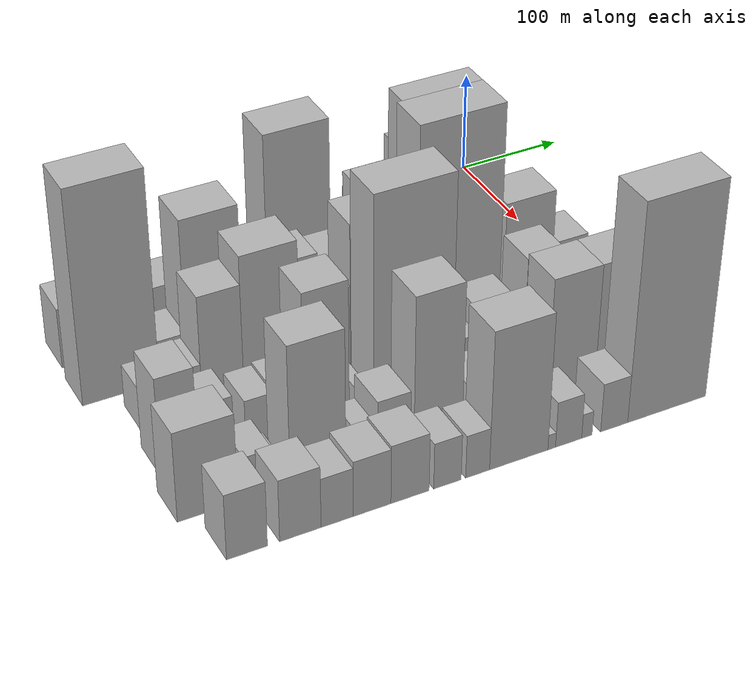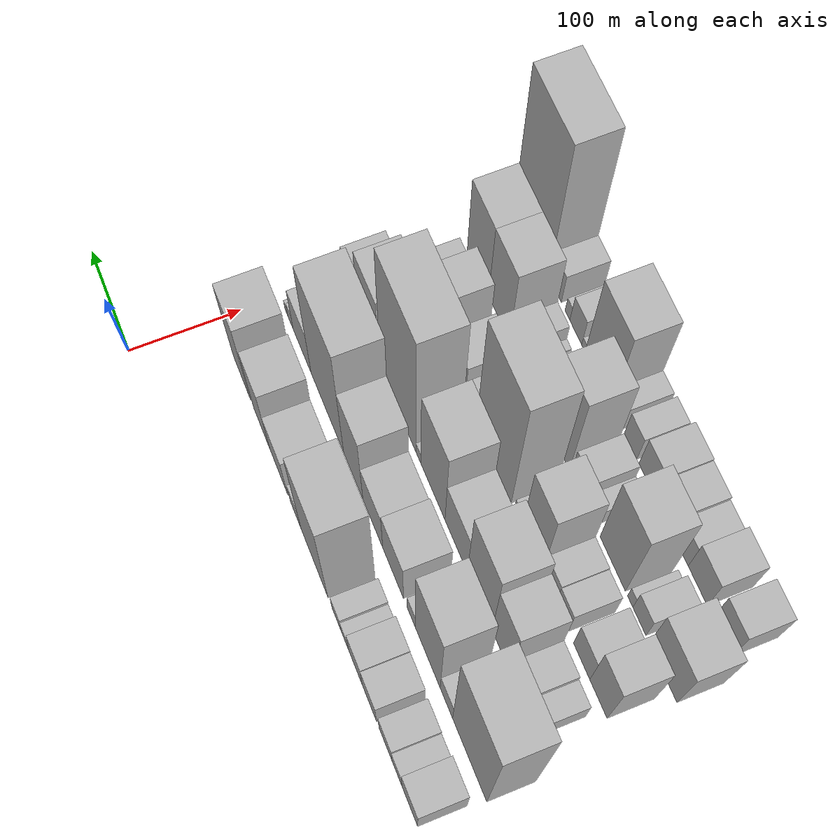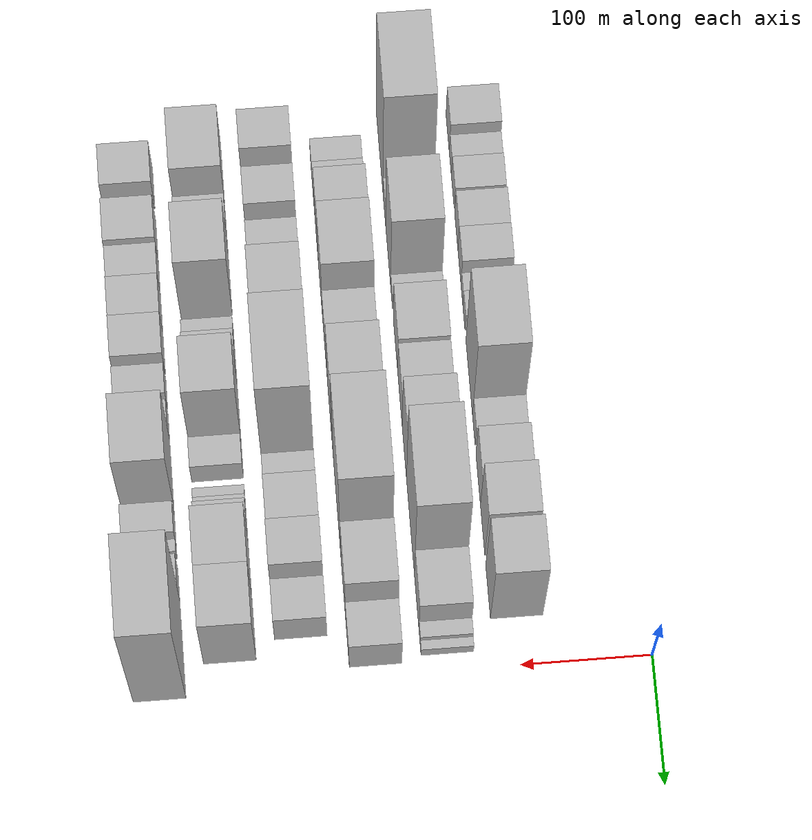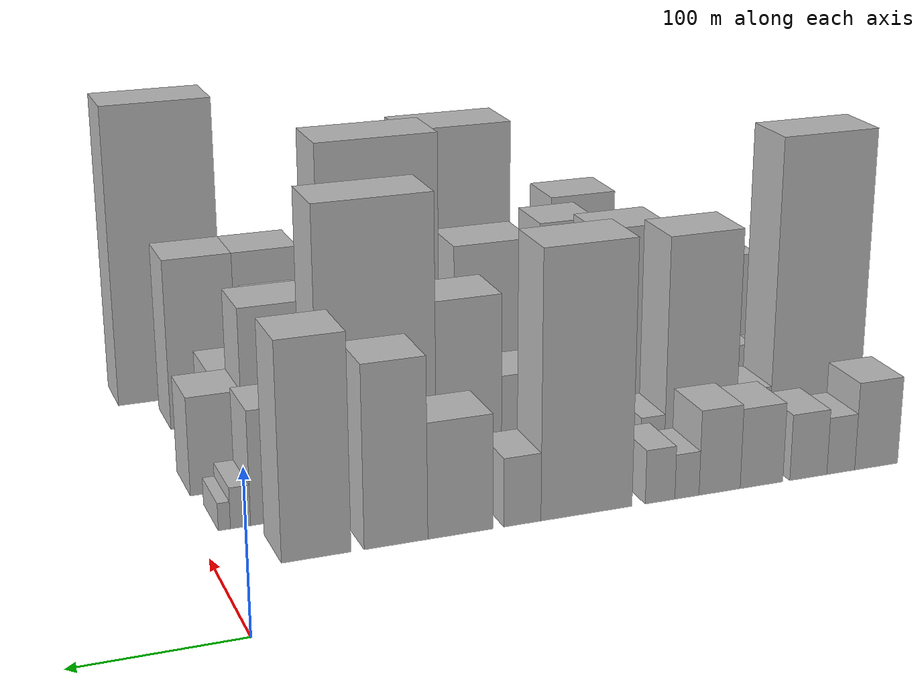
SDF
<sdf version="1.6">
 <world name="default">
  <model name="building_15">
   <static>1</static>
   <pose>100.0000 -434.0075 0 0.000000 0.000000 0.000000</pose>
   <link name="link">
    <pose>0 0 30.00 0 0 0</pose>
    <collision name="collision"><geometry><box><size>40.0000 31.7995 60.0000</size></box></geometry></collision>
    <visual name="visual">
     <cast_shadows>0</cast_shadows>
     <geometry><box><size>40.0000 31.7995 60.0000</size></box></geometry>
     <material>
      <script>
       <uri>model://HANNAS_wall/materials/scripts</uri>
       <uri>model://HANNAS_wall/materials/textures</uri>
       <name>vrc/HANNAS_wall</name>
      </script>
     </material>
    </visual>
   </link>
  </model>
  <model name="building_16">
   <static>1</static>
   <pose>100.0000 -407.9392 0 0.000000 0.000000 0.000000</pose>
   <link name="link">
    <pose>0 0 19.50 0 0 0</pose>
    <collision name="collision"><geometry><box><size>40.0000 20.3372 39.0000</size></box></geometry></collision>
    <visual name="visual">
     <cast_shadows>0</cast_shadows>
     <geometry><box><size>40.0000 20.3372 39.0000</size></box></geometry>
     <material>
      <script>
       <uri>model://HANNAS_wall/materials/scripts</uri>
       <uri>model://HANNAS_wall/materials/textures</uri>
       <name>vrc/HANNAS_wall</name>
      </script>
     </material>
    </visual>
   </link>
  </model>
  <model name="building_17">
   <static>1</static>
   <pose>100.0000 -384.3671 0 0.000000 0.000000 0.000000</pose>
   <link name="link">
    <pose>0 0 22.50 0 0 0</pose>
    <collision name="collision"><geometry><box><size>40.0000 26.8070 45.0000</size></box></geometry></collision>
    <visual name="visual">
     <cast_shadows>0</cast_shadows>
     <geometry><box><size>40.0000 26.8070 45.0000</size></box></geometry>
     <material>
      <script>
       <uri>model://HANNAS_wall/materials/scripts</uri>
       <uri>model://HANNAS_wall/materials/textures</uri>
       <name>vrc/HANNAS_wall</name>
      </script>
     </material>
    </visual>
   </link>
  </model>
  <model name="building_18">
   <static>1</static>
   <pose>100.0000 -350.8128 0 0.000000 0.000000 0.000000</pose>
   <link name="link">
    <pose>0 0 27.00 0 0 0</pose>
    <collision name="collision"><geometry><box><size>40.0000 30.3017 54.0000</size></box></geometry></collision>
    <visual name="visual">
     <cast_shadows>0</cast_shadows>
     <geometry><box><size>40.0000 30.3017 54.0000</size></box></geometry>
     <material>
      <script>
       <uri>model://HANNAS_wall/materials/scripts</uri>
       <uri>model://HANNAS_wall/materials/textures</uri>
       <name>vrc/HANNAS_wall</name>
      </script>
     </material>
    </visual>
   </link>
  </model>
  <model name="building_19">
   <static>1</static>
   <pose>100.0000 -321.2850 0 0.000000 0.000000 0.000000</pose>
   <link name="link">
    <pose>0 0 28.50 0 0 0</pose>
    <collision name="collision"><geometry><box><size>40.0000 28.7539 57.0000</size></box></geometry></collision>
    <visual name="visual">
     <cast_shadows>0</cast_shadows>
     <geometry><box><size>40.0000 28.7539 57.0000</size></box></geometry>
     <material>
      <script>
       <uri>model://HANNAS_wall/materials/scripts</uri>
       <uri>model://HANNAS_wall/materials/textures</uri>
       <name>vrc/HANNAS_wall</name>
      </script>
     </material>
    </visual>
   </link>
  </model>
  <model name="building_20">
   <static>1</static>
   <pose>100.0000 -298.5573 0 0.000000 0.000000 0.000000</pose>
   <link name="link">
    <pose>0 0 15.00 0 0 0</pose>
    <collision name="collision"><geometry><box><size>40.0000 16.7016 30.0000</size></box></geometry></collision>
    <visual name="visual">
     <cast_shadows>0</cast_shadows>
     <geometry><box><size>40.0000 16.7016 30.0000</size></box></geometry>
     <material>
      <script>
       <uri>model://HANNAS_wall/materials/scripts</uri>
       <uri>model://HANNAS_wall/materials/textures</uri>
       <name>vrc/HANNAS_wall</name>
      </script>
     </material>
    </visual>
   </link>
  </model>
  <model name="building_21">
   <static>1</static>
   <pose>100.0000 -280.0952 0 0.000000 0.000000 0.000000</pose>
   <link name="link">
    <pose>0 0 18.00 0 0 0</pose>
    <collision name="collision"><geometry><box><size>40.0000 20.2226 36.0000</size></box></geometry></collision>
    <visual name="visual">
     <cast_shadows>0</cast_shadows>
     <geometry><box><size>40.0000 20.2226 36.0000</size></box></geometry>
     <material>
      <script>
       <uri>model://HANNAS_wall/materials/scripts</uri>
       <uri>model://HANNAS_wall/materials/textures</uri>
       <name>vrc/HANNAS_wall</name>
      </script>
     </material>
    </visual>
   </link>
  </model>
  <model name="building_22">
   <static>1</static>
   <pose>100.0000 -230.6435 0 0.000000 0.000000 0.000000</pose>
   <link name="link">
    <pose>0 0 87.00 0 0 0</pose>
    <collision name="collision"><geometry><box><size>40.0000 60.6807 174.0000</size></box></geometry></collision>
    <visual name="visual">
     <cast_shadows>0</cast_shadows>
     <geometry><box><size>40.0000 60.6807 174.0000</size></box></geometry>
     <material>
      <script>
       <uri>model://HANNAS_wall/materials/scripts</uri>
       <uri>model://HANNAS_wall/materials/textures</uri>
       <name>vrc/HANNAS_wall</name>
      </script>
     </material>
    </visual>
   </link>
  </model>
  <model name="building_23">
   <static>1</static>
   <pose>100.0000 -188.2242 0 0.000000 0.000000 0.000000</pose>
   <link name="link">
    <pose>0 0 22.50 0 0 0</pose>
    <collision name="collision"><geometry><box><size>40.0000 24.1580 45.0000</size></box></geometry></collision>
    <visual name="visual">
     <cast_shadows>0</cast_shadows>
     <geometry><box><size>40.0000 24.1580 45.0000</size></box></geometry>
     <material>
      <script>
       <uri>model://HANNAS_wall/materials/scripts</uri>
       <uri>model://HANNAS_wall/materials/textures</uri>
       <name>vrc/HANNAS_wall</name>
      </script>
     </material>
    </visual>
   </link>
  </model>
  <model name="building_24">
   <static>1</static>
   <pose>100.0000 -148.4430 0 0.000000 0.000000 0.000000</pose>
   <link name="link">
    <pose>0 0 37.50 0 0 0</pose>
    <collision name="collision"><geometry><box><size>40.0000 41.4044 75.0000</size></box></geometry></collision>
    <visual name="visual">
     <cast_shadows>0</cast_shadows>
     <geometry><box><size>40.0000 41.4044 75.0000</size></box></geometry>
     <material>
      <script>
       <uri>model://HANNAS_wall/materials/scripts</uri>
       <uri>model://HANNAS_wall/materials/textures</uri>
       <name>vrc/HANNAS_wall</name>
      </script>
     </material>
    </visual>
   </link>
  </model>
  <model name="building_25">
   <static>1</static>
   <pose>100.0000 -107.9037 0 0.000000 0.000000 0.000000</pose>
   <link name="link">
    <pose>0 0 58.50 0 0 0</pose>
    <collision name="collision"><geometry><box><size>40.0000 39.6741 117.0000</size></box></geometry></collision>
    <visual name="visual">
     <cast_shadows>0</cast_shadows>
     <geometry><box><size>40.0000 39.6741 117.0000</size></box></geometry>
     <material>
      <script>
       <uri>model://HANNAS_wall/materials/scripts</uri>
       <uri>model://HANNAS_wall/materials/textures</uri>
       <name>vrc/HANNAS_wall</name>
      </script>
     </material>
    </visual>
   </link>
  </model>
  <model name="building_26">
   <static>1</static>
   <pose>100.0000 -58.9600 0 0.000000 0.000000 0.000000</pose>
   <link name="link">
    <pose>0 0 69.00 0 0 0</pose>
    <collision name="collision"><geometry><box><size>40.0000 42.2133 138.0000</size></box></geometry></collision>
    <visual name="visual">
     <cast_shadows>0</cast_shadows>
     <geometry><box><size>40.0000 42.2133 138.0000</size></box></geometry>
     <material>
      <script>
       <uri>model://HANNAS_wall/materials/scripts</uri>
       <uri>model://HANNAS_wall/materials/textures</uri>
       <name>vrc/HANNAS_wall</name>
      </script>
     </material>
    </visual>
   </link>
  </model>
  <model name="building_59">
   <static>1</static>
   <pose>155.0000 -418.9712 0 0.000000 0.000000 0.000000</pose>
   <link name="link">
    <pose>0 0 105.00 0 0 0</pose>
    <collision name="collision"><geometry><box><size>40.0000 67.4243 210.0000</size></box></geometry></collision>
    <visual name="visual">
     <cast_shadows>0</cast_shadows>
     <geometry><box><size>40.0000 67.4243 210.0000</size></box></geometry>
     <material>
      <script>
       <uri>model://HANNAS_wall/materials/scripts</uri>
       <uri>model://HANNAS_wall/materials/textures</uri>
       <name>vrc/HANNAS_wall</name>
      </script>
     </material>
    </visual>
   </link>
  </model>
  <model name="building_60">
   <static>1</static>
   <pose>155.0000 -372.6941 0 0.000000 0.000000 0.000000</pose>
   <link name="link">
    <pose>0 0 21.00 0 0 0</pose>
    <collision name="collision"><geometry><box><size>40.0000 25.1300 42.0000</size></box></geometry></collision>
    <visual name="visual">
     <cast_shadows>0</cast_shadows>
     <geometry><box><size>40.0000 25.1300 42.0000</size></box></geometry>
     <material>
      <script>
       <uri>model://HANNAS_wall/materials/scripts</uri>
       <uri>model://HANNAS_wall/materials/textures</uri>
       <name>vrc/HANNAS_wall</name>
      </script>
     </material>
    </visual>
   </link>
  </model>
  <model name="building_61">
   <static>1</static>
   <pose>155.0000 -334.4267 0 0.000000 0.000000 0.000000</pose>
   <link name="link">
    <pose>0 0 76.50 0 0 0</pose>
    <collision name="collision"><geometry><box><size>40.0000 51.4048 153.0000</size></box></geometry></collision>
    <visual name="visual">
     <cast_shadows>0</cast_shadows>
     <geometry><box><size>40.0000 51.4048 153.0000</size></box></geometry>
     <material>
      <script>
       <uri>model://HANNAS_wall/materials/scripts</uri>
       <uri>model://HANNAS_wall/materials/textures</uri>
       <name>vrc/HANNAS_wall</name>
      </script>
     </material>
    </visual>
   </link>
  </model>
  <model name="building_62">
   <static>1</static>
   <pose>155.0000 -300.2617 0 0.000000 0.000000 0.000000</pose>
   <link name="link">
    <pose>0 0 16.50 0 0 0</pose>
    <collision name="collision"><geometry><box><size>40.0000 16.9251 33.0000</size></box></geometry></collision>
    <visual name="visual">
     <cast_shadows>0</cast_shadows>
     <geometry><box><size>40.0000 16.9251 33.0000</size></box></geometry>
     <material>
      <script>
       <uri>model://HANNAS_wall/materials/scripts</uri>
       <uri>model://HANNAS_wall/materials/textures</uri>
       <name>vrc/HANNAS_wall</name>
      </script>
     </material>
    </visual>
   </link>
  </model>
  <model name="building_63">
   <static>1</static>
   <pose>155.0000 -261.4662 0 0.000000 0.000000 0.000000</pose>
   <link name="link">
    <pose>0 0 42.00 0 0 0</pose>
    <collision name="collision"><geometry><box><size>40.0000 44.6659 84.0000</size></box></geometry></collision>
    <visual name="visual">
     <cast_shadows>0</cast_shadows>
     <geometry><box><size>40.0000 44.6659 84.0000</size></box></geometry>
     <material>
      <script>
       <uri>model://HANNAS_wall/materials/scripts</uri>
       <uri>model://HANNAS_wall/materials/textures</uri>
       <name>vrc/HANNAS_wall</name>
      </script>
     </material>
    </visual>
   </link>
  </model>
  <model name="building_64">
   <static>1</static>
   <pose>155.0000 -217.3308 0 0.000000 0.000000 0.000000</pose>
   <link name="link">
    <pose>0 0 37.50 0 0 0</pose>
    <collision name="collision"><geometry><box><size>40.0000 43.6050 75.0000</size></box></geometry></collision>
    <visual name="visual">
     <cast_shadows>0</cast_shadows>
     <geometry><box><size>40.0000 43.6050 75.0000</size></box></geometry>
     <material>
      <script>
       <uri>model://HANNAS_wall/materials/scripts</uri>
       <uri>model://HANNAS_wall/materials/textures</uri>
       <name>vrc/HANNAS_wall</name>
      </script>
     </material>
    </visual>
   </link>
  </model>
  <model name="building_65">
   <static>1</static>
   <pose>155.0000 -173.9012 0 0.000000 0.000000 0.000000</pose>
   <link name="link">
    <pose>0 0 64.50 0 0 0</pose>
    <collision name="collision"><geometry><box><size>40.0000 43.2541 129.0000</size></box></geometry></collision>
    <visual name="visual">
     <cast_shadows>0</cast_shadows>
     <geometry><box><size>40.0000 43.2541 129.0000</size></box></geometry>
     <material>
      <script>
       <uri>model://HANNAS_wall/materials/scripts</uri>
       <uri>model://HANNAS_wall/materials/textures</uri>
       <name>vrc/HANNAS_wall</name>
      </script>
     </material>
    </visual>
   </link>
  </model>
  <model name="building_66">
   <static>1</static>
   <pose>155.0000 -114.4377 0 0.000000 0.000000 0.000000</pose>
   <link name="link">
    <pose>0 0 99.00 0 0 0</pose>
    <collision name="collision"><geometry><box><size>40.0000 75.6730 198.0000</size></box></geometry></collision>
    <visual name="visual">
     <cast_shadows>0</cast_shadows>
     <geometry><box><size>40.0000 75.6730 198.0000</size></box></geometry>
     <material>
      <script>
       <uri>model://HANNAS_wall/materials/scripts</uri>
       <uri>model://HANNAS_wall/materials/textures</uri>
       <name>vrc/HANNAS_wall</name>
      </script>
     </material>
    </visual>
   </link>
  </model>
  <model name="building_67">
   <static>1</static>
   <pose>155.0000 -54.9762 0 0.000000 0.000000 0.000000</pose>
   <link name="link">
    <pose>0 0 37.50 0 0 0</pose>
    <collision name="collision"><geometry><box><size>40.0000 43.2499 75.0000</size></box></geometry></collision>
    <visual name="visual">
     <cast_shadows>0</cast_shadows>
     <geometry><box><size>40.0000 43.2499 75.0000</size></box></geometry>
     <material>
      <script>
       <uri>model://HANNAS_wall/materials/scripts</uri>
       <uri>model://HANNAS_wall/materials/textures</uri>
       <name>vrc/HANNAS_wall</name>
      </script>
     </material>
    </visual>
   </link>
  </model>
  <model name="building_68">
   <static>1</static>
   <pose>155.0000 -27.1181 0 0.000000 0.000000 0.000000</pose>
   <link name="link">
    <pose>0 0 13.50 0 0 0</pose>
    <collision name="collision"><geometry><box><size>40.0000 12.4663 27.0000</size></box></geometry></collision>
    <visual name="visual">
     <cast_shadows>0</cast_shadows>
     <geometry><box><size>40.0000 12.4663 27.0000</size></box></geometry>
     <material>
      <script>
       <uri>model://HANNAS_wall/materials/scripts</uri>
       <uri>model://HANNAS_wall/materials/textures</uri>
       <name>vrc/HANNAS_wall</name>
      </script>
     </material>
    </visual>
   </link>
  </model>
  <model name="building_69">
   <static>1</static>
   <pose>155.0000 -17.1437 0 0.000000 0.000000 0.000000</pose>
   <link name="link">
    <pose>0 0 9.00 0 0 0</pose>
    <collision name="collision"><geometry><box><size>40.0000 7.4824 18.0000</size></box></geometry></collision>
    <visual name="visual">
     <cast_shadows>0</cast_shadows>
     <geometry><box><size>40.0000 7.4824 18.0000</size></box></geometry>
     <material>
      <script>
       <uri>model://HANNAS_wall/materials/scripts</uri>
       <uri>model://HANNAS_wall/materials/textures</uri>
       <name>vrc/HANNAS_wall</name>
      </script>
     </material>
    </visual>
   </link>
  </model>
  <model name="building_101">
   <static>1</static>
   <pose>210.0000 -410.9570 0 0.000000 0.000000 0.000000</pose>
   <link name="link">
    <pose>0 0 21.00 0 0 0</pose>
    <collision name="collision"><geometry><box><size>40.0000 22.5368 42.0000</size></box></geometry></collision>
    <visual name="visual">
     <cast_shadows>0</cast_shadows>
     <geometry><box><size>40.0000 22.5368 42.0000</size></box></geometry>
     <material>
      <script>
       <uri>model://HANNAS_wall/materials/scripts</uri>
       <uri>model://HANNAS_wall/materials/textures</uri>
       <name>vrc/HANNAS_wall</name>
      </script>
     </material>
    </visual>
   </link>
  </model>
  <model name="building_102">
   <static>1</static>
   <pose>210.0000 -384.8382 0 0.000000 0.000000 0.000000</pose>
   <link name="link">
    <pose>0 0 25.50 0 0 0</pose>
    <collision name="collision"><geometry><box><size>40.0000 29.7009 51.0000</size></box></geometry></collision>
    <visual name="visual">
     <cast_shadows>0</cast_shadows>
     <geometry><box><size>40.0000 29.7009 51.0000</size></box></geometry>
     <material>
      <script>
       <uri>model://HANNAS_wall/materials/scripts</uri>
       <uri>model://HANNAS_wall/materials/textures</uri>
       <name>vrc/HANNAS_wall</name>
      </script>
     </material>
    </visual>
   </link>
  </model>
  <model name="building_103">
   <static>1</static>
   <pose>210.0000 -351.5279 0 0.000000 0.000000 0.000000</pose>
   <link name="link">
    <pose>0 0 58.50 0 0 0</pose>
    <collision name="collision"><geometry><box><size>40.0000 36.9197 117.0000</size></box></geometry></collision>
    <visual name="visual">
     <cast_shadows>0</cast_shadows>
     <geometry><box><size>40.0000 36.9197 117.0000</size></box></geometry>
     <material>
      <script>
       <uri>model://HANNAS_wall/materials/scripts</uri>
       <uri>model://HANNAS_wall/materials/textures</uri>
       <name>vrc/HANNAS_wall</name>
      </script>
     </material>
    </visual>
   </link>
  </model>
  <model name="building_104">
   <static>1</static>
   <pose>210.0000 -307.8760 0 0.000000 0.000000 0.000000</pose>
   <link name="link">
    <pose>0 0 72.00 0 0 0</pose>
    <collision name="collision"><geometry><box><size>40.0000 50.3840 144.0000</size></box></geometry></collision>
    <visual name="visual">
     <cast_shadows>0</cast_shadows>
     <geometry><box><size>40.0000 50.3840 144.0000</size></box></geometry>
     <material>
      <script>
       <uri>model://HANNAS_wall/materials/scripts</uri>
       <uri>model://HANNAS_wall/materials/textures</uri>
       <name>vrc/HANNAS_wall</name>
      </script>
     </material>
    </visual>
   </link>
  </model>
  <model name="building_105">
   <static>1</static>
   <pose>210.0000 -259.4797 0 0.000000 0.000000 0.000000</pose>
   <link name="link">
    <pose>0 0 42.00 0 0 0</pose>
    <collision name="collision"><geometry><box><size>40.0000 46.4086 84.0000</size></box></geometry></collision>
    <visual name="visual">
     <cast_shadows>0</cast_shadows>
     <geometry><box><size>40.0000 46.4086 84.0000</size></box></geometry>
     <material>
      <script>
       <uri>model://HANNAS_wall/materials/scripts</uri>
       <uri>model://HANNAS_wall/materials/textures</uri>
       <name>vrc/HANNAS_wall</name>
      </script>
     </material>
    </visual>
   </link>
  </model>
  <model name="building_106">
   <static>1</static>
   <pose>210.0000 -210.1676 0 0.000000 0.000000 0.000000</pose>
   <link name="link">
    <pose>0 0 72.00 0 0 0</pose>
    <collision name="collision"><geometry><box><size>40.0000 52.2157 144.0000</size></box></geometry></collision>
    <visual name="visual">
     <cast_shadows>0</cast_shadows>
     <geometry><box><size>40.0000 52.2157 144.0000</size></box></geometry>
     <material>
      <script>
       <uri>model://HANNAS_wall/materials/scripts</uri>
       <uri>model://HANNAS_wall/materials/textures</uri>
       <name>vrc/HANNAS_wall</name>
      </script>
     </material>
    </visual>
   </link>
  </model>
  <model name="building_107">
   <static>1</static>
   <pose>210.0000 -178.8407 0 0.000000 0.000000 0.000000</pose>
   <link name="link">
    <pose>0 0 10.50 0 0 0</pose>
    <collision name="collision"><geometry><box><size>40.0000 10.4381 21.0000</size></box></geometry></collision>
    <visual name="visual">
     <cast_shadows>0</cast_shadows>
     <geometry><box><size>40.0000 10.4381 21.0000</size></box></geometry>
     <material>
      <script>
       <uri>model://HANNAS_wall/materials/scripts</uri>
       <uri>model://HANNAS_wall/materials/textures</uri>
       <name>vrc/HANNAS_wall</name>
      </script>
     </material>
    </visual>
   </link>
  </model>
  <model name="building_108">
   <static>1</static>
   <pose>210.0000 -134.2193 0 0.000000 0.000000 0.000000</pose>
   <link name="link">
    <pose>0 0 109.50 0 0 0</pose>
    <collision name="collision"><geometry><box><size>40.0000 78.8046 219.0000</size></box></geometry></collision>
    <visual name="visual">
     <cast_shadows>0</cast_shadows>
     <geometry><box><size>40.0000 78.8046 219.0000</size></box></geometry>
     <material>
      <script>
       <uri>model://HANNAS_wall/materials/scripts</uri>
       <uri>model://HANNAS_wall/materials/textures</uri>
       <name>vrc/HANNAS_wall</name>
      </script>
     </material>
    </visual>
   </link>
  </model>
  <model name="building_109">
   <static>1</static>
   <pose>210.0000 -66.9977 0 0.000000 0.000000 0.000000</pose>
   <link name="link">
    <pose>0 0 60.00 0 0 0</pose>
    <collision name="collision"><geometry><box><size>40.0000 47.6388 120.0000</size></box></geometry></collision>
    <visual name="visual">
     <cast_shadows>0</cast_shadows>
     <geometry><box><size>40.0000 47.6388 120.0000</size></box></geometry>
     <material>
      <script>
       <uri>model://HANNAS_wall/materials/scripts</uri>
       <uri>model://HANNAS_wall/materials/textures</uri>
       <name>vrc/HANNAS_wall</name>
      </script>
     </material>
    </visual>
   </link>
  </model>
  <model name="building_110">
   <static>1</static>
   <pose>210.0000 -25.8172 0 0.000000 0.000000 0.000000</pose>
   <link name="link">
    <pose>0 0 33.00 0 0 0</pose>
    <collision name="collision"><geometry><box><size>40.0000 34.7222 66.0000</size></box></geometry></collision>
    <visual name="visual">
     <cast_shadows>0</cast_shadows>
     <geometry><box><size>40.0000 34.7222 66.0000</size></box></geometry>
     <material>
      <script>
       <uri>model://HANNAS_wall/materials/scripts</uri>
       <uri>model://HANNAS_wall/materials/textures</uri>
       <name>vrc/HANNAS_wall</name>
      </script>
     </material>
    </visual>
   </link>
  </model>
  <model name="building_147">
   <static>1</static>
   <pose>265.0000 -413.5375 0 0.000000 0.000000 0.000000</pose>
   <link name="link">
    <pose>0 0 48.00 0 0 0</pose>
    <collision name="collision"><geometry><box><size>40.0000 32.2302 96.0000</size></box></geometry></collision>
    <visual name="visual">
     <cast_shadows>0</cast_shadows>
     <geometry><box><size>40.0000 32.2302 96.0000</size></box></geometry>
     <material>
      <script>
       <uri>model://HANNAS_wall/materials/scripts</uri>
       <uri>model://HANNAS_wall/materials/textures</uri>
       <name>vrc/HANNAS_wall</name>
      </script>
     </material>
    </visual>
   </link>
  </model>
  <model name="building_148">
   <static>1</static>
   <pose>265.0000 -381.9879 0 0.000000 0.000000 0.000000</pose>
   <link name="link">
    <pose>0 0 28.50 0 0 0</pose>
    <collision name="collision"><geometry><box><size>40.0000 30.8690 57.0000</size></box></geometry></collision>
    <visual name="visual">
     <cast_shadows>0</cast_shadows>
     <geometry><box><size>40.0000 30.8690 57.0000</size></box></geometry>
     <material>
      <script>
       <uri>model://HANNAS_wall/materials/scripts</uri>
       <uri>model://HANNAS_wall/materials/textures</uri>
       <name>vrc/HANNAS_wall</name>
      </script>
     </material>
    </visual>
   </link>
  </model>
  <model name="building_149">
   <static>1</static>
   <pose>265.0000 -344.4118 0 0.000000 0.000000 0.000000</pose>
   <link name="link">
    <pose>0 0 24.00 0 0 0</pose>
    <collision name="collision"><geometry><box><size>40.0000 24.2832 48.0000</size></box></geometry></collision>
    <visual name="visual">
     <cast_shadows>0</cast_shadows>
     <geometry><box><size>40.0000 24.2832 48.0000</size></box></geometry>
     <material>
      <script>
       <uri>model://HANNAS_wall/materials/scripts</uri>
       <uri>model://HANNAS_wall/materials/textures</uri>
       <name>vrc/HANNAS_wall</name>
      </script>
     </material>
    </visual>
   </link>
  </model>
  <model name="building_150">
   <static>1</static>
   <pose>265.0000 -318.9359 0 0.000000 0.000000 0.000000</pose>
   <link name="link">
    <pose>0 0 25.50 0 0 0</pose>
    <collision name="collision"><geometry><box><size>40.0000 26.6687 51.0000</size></box></geometry></collision>
    <visual name="visual">
     <cast_shadows>0</cast_shadows>
     <geometry><box><size>40.0000 26.6687 51.0000</size></box></geometry>
     <material>
      <script>
       <uri>model://HANNAS_wall/materials/scripts</uri>
       <uri>model://HANNAS_wall/materials/textures</uri>
       <name>vrc/HANNAS_wall</name>
      </script>
     </material>
    </visual>
   </link>
  </model>
  <model name="building_151">
   <static>1</static>
   <pose>265.0000 -285.3058 0 0.000000 0.000000 0.000000</pose>
   <link name="link">
    <pose>0 0 67.50 0 0 0</pose>
    <collision name="collision"><geometry><box><size>40.0000 40.5915 135.0000</size></box></geometry></collision>
    <visual name="visual">
     <cast_shadows>0</cast_shadows>
     <geometry><box><size>40.0000 40.5915 135.0000</size></box></geometry>
     <material>
      <script>
       <uri>model://HANNAS_wall/materials/scripts</uri>
       <uri>model://HANNAS_wall/materials/textures</uri>
       <name>vrc/HANNAS_wall</name>
      </script>
     </material>
    </visual>
   </link>
  </model>
  <model name="building_152">
   <static>1</static>
   <pose>265.0000 -254.5947 0 0.000000 0.000000 0.000000</pose>
   <link name="link">
    <pose>0 0 13.50 0 0 0</pose>
    <collision name="collision"><geometry><box><size>40.0000 10.8306 27.0000</size></box></geometry></collision>
    <visual name="visual">
     <cast_shadows>0</cast_shadows>
     <geometry><box><size>40.0000 10.8306 27.0000</size></box></geometry>
     <material>
      <script>
       <uri>model://HANNAS_wall/materials/scripts</uri>
       <uri>model://HANNAS_wall/materials/textures</uri>
       <name>vrc/HANNAS_wall</name>
      </script>
     </material>
    </visual>
   </link>
  </model>
  <model name="building_153">
   <static>1</static>
   <pose>265.0000 -206.5148 0 0.000000 0.000000 0.000000</pose>
   <link name="link">
    <pose>0 0 103.50 0 0 0</pose>
    <collision name="collision"><geometry><box><size>40.0000 73.3292 207.0000</size></box></geometry></collision>
    <visual name="visual">
     <cast_shadows>0</cast_shadows>
     <geometry><box><size>40.0000 73.3292 207.0000</size></box></geometry>
     <material>
      <script>
       <uri>model://HANNAS_wall/materials/scripts</uri>
       <uri>model://HANNAS_wall/materials/textures</uri>
       <name>vrc/HANNAS_wall</name>
      </script>
     </material>
    </visual>
   </link>
  </model>
  <model name="building_154">
   <static>1</static>
   <pose>265.0000 -158.3676 0 0.000000 0.000000 0.000000</pose>
   <link name="link">
    <pose>0 0 21.00 0 0 0</pose>
    <collision name="collision"><geometry><box><size>40.0000 22.9653 42.0000</size></box></geometry></collision>
    <visual name="visual">
     <cast_shadows>0</cast_shadows>
     <geometry><box><size>40.0000 22.9653 42.0000</size></box></geometry>
     <material>
      <script>
       <uri>model://HANNAS_wall/materials/scripts</uri>
       <uri>model://HANNAS_wall/materials/textures</uri>
       <name>vrc/HANNAS_wall</name>
      </script>
     </material>
    </visual>
   </link>
  </model>
  <model name="building_155">
   <static>1</static>
   <pose>265.0000 -128.6838 0 0.000000 0.000000 0.000000</pose>
   <link name="link">
    <pose>0 0 33.00 0 0 0</pose>
    <collision name="collision"><geometry><box><size>40.0000 36.4021 66.0000</size></box></geometry></collision>
    <visual name="visual">
     <cast_shadows>0</cast_shadows>
     <geometry><box><size>40.0000 36.4021 66.0000</size></box></geometry>
     <material>
      <script>
       <uri>model://HANNAS_wall/materials/scripts</uri>
       <uri>model://HANNAS_wall/materials/textures</uri>
       <name>vrc/HANNAS_wall</name>
      </script>
     </material>
    </visual>
   </link>
  </model>
  <model name="building_156">
   <static>1</static>
   <pose>265.0000 -106.2675 0 0.000000 0.000000 0.000000</pose>
   <link name="link">
    <pose>0 0 10.50 0 0 0</pose>
    <collision name="collision"><geometry><box><size>40.0000 8.4305 21.0000</size></box></geometry></collision>
    <visual name="visual">
     <cast_shadows>0</cast_shadows>
     <geometry><box><size>40.0000 8.4305 21.0000</size></box></geometry>
     <material>
      <script>
       <uri>model://HANNAS_wall/materials/scripts</uri>
       <uri>model://HANNAS_wall/materials/textures</uri>
       <name>vrc/HANNAS_wall</name>
      </script>
     </material>
    </visual>
   </link>
  </model>
  <model name="building_157">
   <static>1</static>
   <pose>265.0000 -84.3492 0 0.000000 0.000000 0.000000</pose>
   <link name="link">
    <pose>0 0 51.00 0 0 0</pose>
    <collision name="collision"><geometry><box><size>40.0000 35.4060 102.0000</size></box></geometry></collision>
    <visual name="visual">
     <cast_shadows>0</cast_shadows>
     <geometry><box><size>40.0000 35.4060 102.0000</size></box></geometry>
     <material>
      <script>
       <uri>model://HANNAS_wall/materials/scripts</uri>
       <uri>model://HANNAS_wall/materials/textures</uri>
       <name>vrc/HANNAS_wall</name>
      </script>
     </material>
    </visual>
   </link>
  </model>
  <model name="building_158">
   <static>1</static>
   <pose>265.0000 -50.4318 0 0.000000 0.000000 0.000000</pose>
   <link name="link">
    <pose>0 0 30.00 0 0 0</pose>
    <collision name="collision"><geometry><box><size>40.0000 32.4289 60.0000</size></box></geometry></collision>
    <visual name="visual">
     <cast_shadows>0</cast_shadows>
     <geometry><box><size>40.0000 32.4289 60.0000</size></box></geometry>
     <material>
      <script>
       <uri>model://HANNAS_wall/materials/scripts</uri>
       <uri>model://HANNAS_wall/materials/textures</uri>
       <name>vrc/HANNAS_wall</name>
      </script>
     </material>
    </visual>
   </link>
  </model>
  <model name="building_199">
   <static>1</static>
   <pose>320.0000 -413.4956 0 0.000000 0.000000 0.000000</pose>
   <link name="link">
    <pose>0 0 43.50 0 0 0</pose>
    <collision name="collision"><geometry><box><size>40.0000 50.3985 87.0000</size></box></geometry></collision>
    <visual name="visual">
     <cast_shadows>0</cast_shadows>
     <geometry><box><size>40.0000 50.3985 87.0000</size></box></geometry>
     <material>
      <script>
       <uri>model://HANNAS_wall/materials/scripts</uri>
       <uri>model://HANNAS_wall/materials/textures</uri>
       <name>vrc/HANNAS_wall</name>
      </script>
     </material>
    </visual>
   </link>
  </model>
  <model name="building_200">
   <static>1</static>
   <pose>320.0000 -370.1072 0 0.000000 0.000000 0.000000</pose>
   <link name="link">
    <pose>0 0 21.00 0 0 0</pose>
    <collision name="collision"><geometry><box><size>40.0000 24.3782 42.0000</size></box></geometry></collision>
    <visual name="visual">
     <cast_shadows>0</cast_shadows>
     <geometry><box><size>40.0000 24.3782 42.0000</size></box></geometry>
     <material>
      <script>
       <uri>model://HANNAS_wall/materials/scripts</uri>
       <uri>model://HANNAS_wall/materials/textures</uri>
       <name>vrc/HANNAS_wall</name>
      </script>
     </material>
    </visual>
   </link>
  </model>
  <model name="building_201">
   <static>1</static>
   <pose>320.0000 -352.9234 0 0.000000 0.000000 0.000000</pose>
   <link name="link">
    <pose>0 0 12.00 0 0 0</pose>
    <collision name="collision"><geometry><box><size>40.0000 9.9896 24.0000</size></box></geometry></collision>
    <visual name="visual">
     <cast_shadows>0</cast_shadows>
     <geometry><box><size>40.0000 9.9896 24.0000</size></box></geometry>
     <material>
      <script>
       <uri>model://HANNAS_wall/materials/scripts</uri>
       <uri>model://HANNAS_wall/materials/textures</uri>
       <name>vrc/HANNAS_wall</name>
      </script>
     </material>
    </visual>
   </link>
  </model>
  <model name="building_202">
   <static>1</static>
   <pose>320.0000 -319.7423 0 0.000000 0.000000 0.000000</pose>
   <link name="link">
    <pose>0 0 67.50 0 0 0</pose>
    <collision name="collision"><geometry><box><size>40.0000 48.3726 135.0000</size></box></geometry></collision>
    <visual name="visual">
     <cast_shadows>0</cast_shadows>
     <geometry><box><size>40.0000 48.3726 135.0000</size></box></geometry>
     <material>
      <script>
       <uri>model://HANNAS_wall/materials/scripts</uri>
       <uri>model://HANNAS_wall/materials/textures</uri>
       <name>vrc/HANNAS_wall</name>
      </script>
     </material>
    </visual>
   </link>
  </model>
  <model name="building_203">
   <static>1</static>
   <pose>320.0000 -276.6124 0 0.000000 0.000000 0.000000</pose>
   <link name="link">
    <pose>0 0 15.00 0 0 0</pose>
    <collision name="collision"><geometry><box><size>40.0000 17.8872 30.0000</size></box></geometry></collision>
    <visual name="visual">
     <cast_shadows>0</cast_shadows>
     <geometry><box><size>40.0000 17.8872 30.0000</size></box></geometry>
     <material>
      <script>
       <uri>model://HANNAS_wall/materials/scripts</uri>
       <uri>model://HANNAS_wall/materials/textures</uri>
       <name>vrc/HANNAS_wall</name>
      </script>
     </material>
    </visual>
   </link>
  </model>
  <model name="building_204">
   <static>1</static>
   <pose>320.0000 -252.8573 0 0.000000 0.000000 0.000000</pose>
   <link name="link">
    <pose>0 0 27.00 0 0 0</pose>
    <collision name="collision"><geometry><box><size>40.0000 29.6229 54.0000</size></box></geometry></collision>
    <visual name="visual">
     <cast_shadows>0</cast_shadows>
     <geometry><box><size>40.0000 29.6229 54.0000</size></box></geometry>
     <material>
      <script>
       <uri>model://HANNAS_wall/materials/scripts</uri>
       <uri>model://HANNAS_wall/materials/textures</uri>
       <name>vrc/HANNAS_wall</name>
      </script>
     </material>
    </visual>
   </link>
  </model>
  <model name="building_205">
   <static>1</static>
   <pose>320.0000 -213.1245 0 0.000000 0.000000 0.000000</pose>
   <link name="link">
    <pose>0 0 72.00 0 0 0</pose>
    <collision name="collision"><geometry><box><size>40.0000 43.8428 144.0000</size></box></geometry></collision>
    <visual name="visual">
     <cast_shadows>0</cast_shadows>
     <geometry><box><size>40.0000 43.8428 144.0000</size></box></geometry>
     <material>
      <script>
       <uri>model://HANNAS_wall/materials/scripts</uri>
       <uri>model://HANNAS_wall/materials/textures</uri>
       <name>vrc/HANNAS_wall</name>
      </script>
     </material>
    </visual>
   </link>
  </model>
  <model name="building_206">
   <static>1</static>
   <pose>320.0000 -175.2366 0 0.000000 0.000000 0.000000</pose>
   <link name="link">
    <pose>0 0 21.00 0 0 0</pose>
    <collision name="collision"><geometry><box><size>40.0000 23.9331 42.0000</size></box></geometry></collision>
    <visual name="visual">
     <cast_shadows>0</cast_shadows>
     <geometry><box><size>40.0000 23.9331 42.0000</size></box></geometry>
     <material>
      <script>
       <uri>model://HANNAS_wall/materials/scripts</uri>
       <uri>model://HANNAS_wall/materials/textures</uri>
       <name>vrc/HANNAS_wall</name>
      </script>
     </material>
    </visual>
   </link>
  </model>
  <model name="building_207">
   <static>1</static>
   <pose>320.0000 -149.2493 0 0.000000 0.000000 0.000000</pose>
   <link name="link">
    <pose>0 0 9.00 0 0 0</pose>
    <collision name="collision"><geometry><box><size>40.0000 8.0414 18.0000</size></box></geometry></collision>
    <visual name="visual">
     <cast_shadows>0</cast_shadows>
     <geometry><box><size>40.0000 8.0414 18.0000</size></box></geometry>
     <material>
      <script>
       <uri>model://HANNAS_wall/materials/scripts</uri>
       <uri>model://HANNAS_wall/materials/textures</uri>
       <name>vrc/HANNAS_wall</name>
      </script>
     </material>
    </visual>
   </link>
  </model>
  <model name="building_208">
   <static>1</static>
   <pose>320.0000 -140.2733 0 0.000000 0.000000 0.000000</pose>
   <link name="link">
    <pose>0 0 10.50 0 0 0</pose>
    <collision name="collision"><geometry><box><size>40.0000 9.9106 21.0000</size></box></geometry></collision>
    <visual name="visual">
     <cast_shadows>0</cast_shadows>
     <geometry><box><size>40.0000 9.9106 21.0000</size></box></geometry>
     <material>
      <script>
       <uri>model://HANNAS_wall/materials/scripts</uri>
       <uri>model://HANNAS_wall/materials/textures</uri>
       <name>vrc/HANNAS_wall</name>
      </script>
     </material>
    </visual>
   </link>
  </model>
  <model name="building_209">
   <static>1</static>
   <pose>320.0000 -123.2847 0 0.000000 0.000000 0.000000</pose>
   <link name="link">
    <pose>0 0 22.50 0 0 0</pose>
    <collision name="collision"><geometry><box><size>40.0000 24.0664 45.0000</size></box></geometry></collision>
    <visual name="visual">
     <cast_shadows>0</cast_shadows>
     <geometry><box><size>40.0000 24.0664 45.0000</size></box></geometry>
     <material>
      <script>
       <uri>model://HANNAS_wall/materials/scripts</uri>
       <uri>model://HANNAS_wall/materials/textures</uri>
       <name>vrc/HANNAS_wall</name>
      </script>
     </material>
    </visual>
   </link>
  </model>
  <model name="building_210">
   <static>1</static>
   <pose>320.0000 -88.6847 0 0.000000 0.000000 0.000000</pose>
   <link name="link">
    <pose>0 0 60.00 0 0 0</pose>
    <collision name="collision"><geometry><box><size>40.0000 45.1336 120.0000</size></box></geometry></collision>
    <visual name="visual">
     <cast_shadows>0</cast_shadows>
     <geometry><box><size>40.0000 45.1336 120.0000</size></box></geometry>
     <material>
      <script>
       <uri>model://HANNAS_wall/materials/scripts</uri>
       <uri>model://HANNAS_wall/materials/textures</uri>
       <name>vrc/HANNAS_wall</name>
      </script>
     </material>
    </visual>
   </link>
  </model>
  <model name="building_211">
   <static>1</static>
   <pose>320.0000 -42.7455 0 0.000000 0.000000 0.000000</pose>
   <link name="link">
    <pose>0 0 60.00 0 0 0</pose>
    <collision name="collision"><geometry><box><size>40.0000 46.7450 120.0000</size></box></geometry></collision>
    <visual name="visual">
     <cast_shadows>0</cast_shadows>
     <geometry><box><size>40.0000 46.7450 120.0000</size></box></geometry>
     <material>
      <script>
       <uri>model://HANNAS_wall/materials/scripts</uri>
       <uri>model://HANNAS_wall/materials/textures</uri>
       <name>vrc/HANNAS_wall</name>
      </script>
     </material>
    </visual>
   </link>
  </model>
  <model name="building_247">
   <static>1</static>
   <pose>375.0000 -405.4765 0 0.000000 0.000000 0.000000</pose>
   <link name="link">
    <pose>0 0 31.50 0 0 0</pose>
    <collision name="collision"><geometry><box><size>40.0000 33.5790 63.0000</size></box></geometry></collision>
    <visual name="visual">
     <cast_shadows>0</cast_shadows>
     <geometry><box><size>40.0000 33.5790 63.0000</size></box></geometry>
     <material>
      <script>
       <uri>model://HANNAS_wall/materials/scripts</uri>
       <uri>model://HANNAS_wall/materials/textures</uri>
       <name>vrc/HANNAS_wall</name>
      </script>
     </material>
    </visual>
   </link>
  </model>
  <model name="building_248">
   <static>1</static>
   <pose>375.0000 -361.3590 0 0.000000 0.000000 0.000000</pose>
   <link name="link">
    <pose>0 0 30.00 0 0 0</pose>
    <collision name="collision"><geometry><box><size>40.0000 34.6561 60.0000</size></box></geometry></collision>
    <visual name="visual">
     <cast_shadows>0</cast_shadows>
     <geometry><box><size>40.0000 34.6561 60.0000</size></box></geometry>
     <material>
      <script>
       <uri>model://HANNAS_wall/materials/scripts</uri>
       <uri>model://HANNAS_wall/materials/textures</uri>
       <name>vrc/HANNAS_wall</name>
      </script>
     </material>
    </visual>
   </link>
  </model>
  <model name="building_249">
   <static>1</static>
   <pose>375.0000 -330.4032 0 0.000000 0.000000 0.000000</pose>
   <link name="link">
    <pose>0 0 24.00 0 0 0</pose>
    <collision name="collision"><geometry><box><size>40.0000 27.2554 48.0000</size></box></geometry></collision>
    <visual name="visual">
     <cast_shadows>0</cast_shadows>
     <geometry><box><size>40.0000 27.2554 48.0000</size></box></geometry>
     <material>
      <script>
       <uri>model://HANNAS_wall/materials/scripts</uri>
       <uri>model://HANNAS_wall/materials/textures</uri>
       <name>vrc/HANNAS_wall</name>
      </script>
     </material>
    </visual>
   </link>
  </model>
  <model name="building_250">
   <static>1</static>
   <pose>375.0000 -300.5840 0 0.000000 0.000000 0.000000</pose>
   <link name="link">
    <pose>0 0 27.00 0 0 0</pose>
    <collision name="collision"><geometry><box><size>40.0000 32.3830 54.0000</size></box></geometry></collision>
    <visual name="visual">
     <cast_shadows>0</cast_shadows>
     <geometry><box><size>40.0000 32.3830 54.0000</size></box></geometry>
     <material>
      <script>
       <uri>model://HANNAS_wall/materials/scripts</uri>
       <uri>model://HANNAS_wall/materials/textures</uri>
       <name>vrc/HANNAS_wall</name>
      </script>
     </material>
    </visual>
   </link>
  </model>
  <model name="building_251">
   <static>1</static>
   <pose>375.0000 -267.7377 0 0.000000 0.000000 0.000000</pose>
   <link name="link">
    <pose>0 0 28.50 0 0 0</pose>
    <collision name="collision"><geometry><box><size>40.0000 33.3096 57.0000</size></box></geometry></collision>
    <visual name="visual">
     <cast_shadows>0</cast_shadows>
     <geometry><box><size>40.0000 33.3096 57.0000</size></box></geometry>
     <material>
      <script>
       <uri>model://HANNAS_wall/materials/scripts</uri>
       <uri>model://HANNAS_wall/materials/textures</uri>
       <name>vrc/HANNAS_wall</name>
      </script>
     </material>
    </visual>
   </link>
  </model>
  <model name="building_252">
   <static>1</static>
   <pose>375.0000 -234.9044 0 0.000000 0.000000 0.000000</pose>
   <link name="link">
    <pose>0 0 22.50 0 0 0</pose>
    <collision name="collision"><geometry><box><size>40.0000 24.3571 45.0000</size></box></geometry></collision>
    <visual name="visual">
     <cast_shadows>0</cast_shadows>
     <geometry><box><size>40.0000 24.3571 45.0000</size></box></geometry>
     <material>
      <script>
       <uri>model://HANNAS_wall/materials/scripts</uri>
       <uri>model://HANNAS_wall/materials/textures</uri>
       <name>vrc/HANNAS_wall</name>
      </script>
     </material>
    </visual>
   </link>
  </model>
  <model name="building_253">
   <static>1</static>
   <pose>375.0000 -208.0311 0 0.000000 0.000000 0.000000</pose>
   <link name="link">
    <pose>0 0 21.00 0 0 0</pose>
    <collision name="collision"><geometry><box><size>40.0000 21.3894 42.0000</size></box></geometry></collision>
    <visual name="visual">
     <cast_shadows>0</cast_shadows>
     <geometry><box><size>40.0000 21.3894 42.0000</size></box></geometry>
     <material>
      <script>
       <uri>model://HANNAS_wall/materials/scripts</uri>
       <uri>model://HANNAS_wall/materials/textures</uri>
       <name>vrc/HANNAS_wall</name>
      </script>
     </material>
    </visual>
   </link>
  </model>
  <model name="building_254">
   <static>1</static>
   <pose>375.0000 -170.7428 0 0.000000 0.000000 0.000000</pose>
   <link name="link">
    <pose>0 0 67.50 0 0 0</pose>
    <collision name="collision"><geometry><box><size>40.0000 53.1873 135.0000</size></box></geometry></collision>
    <visual name="visual">
     <cast_shadows>0</cast_shadows>
     <geometry><box><size>40.0000 53.1873 135.0000</size></box></geometry>
     <material>
      <script>
       <uri>model://HANNAS_wall/materials/scripts</uri>
       <uri>model://HANNAS_wall/materials/textures</uri>
       <name>vrc/HANNAS_wall</name>
      </script>
     </material>
    </visual>
   </link>
  </model>
  <model name="building_255">
   <static>1</static>
   <pose>375.0000 -140.6564 0 0.000000 0.000000 0.000000</pose>
   <link name="link">
    <pose>0 0 7.50 0 0 0</pose>
    <collision name="collision"><geometry><box><size>40.0000 6.9855 15.0000</size></box></geometry></collision>
    <visual name="visual">
     <cast_shadows>0</cast_shadows>
     <geometry><box><size>40.0000 6.9855 15.0000</size></box></geometry>
     <material>
      <script>
       <uri>model://HANNAS_wall/materials/scripts</uri>
       <uri>model://HANNAS_wall/materials/textures</uri>
       <name>vrc/HANNAS_wall</name>
      </script>
     </material>
    </visual>
   </link>
  </model>
  <model name="building_256">
   <static>1</static>
   <pose>375.0000 -124.9889 0 0.000000 0.000000 0.000000</pose>
   <link name="link">
    <pose>0 0 22.50 0 0 0</pose>
    <collision name="collision"><geometry><box><size>40.0000 24.3496 45.0000</size></box></geometry></collision>
    <visual name="visual">
     <cast_shadows>0</cast_shadows>
     <geometry><box><size>40.0000 24.3496 45.0000</size></box></geometry>
     <material>
      <script>
       <uri>model://HANNAS_wall/materials/scripts</uri>
       <uri>model://HANNAS_wall/materials/textures</uri>
       <name>vrc/HANNAS_wall</name>
      </script>
     </material>
    </visual>
   </link>
  </model>
  <model name="building_257">
   <static>1</static>
   <pose>375.0000 -107.9237 0 0.000000 0.000000 0.000000</pose>
   <link name="link">
    <pose>0 0 12.00 0 0 0</pose>
    <collision name="collision"><geometry><box><size>40.0000 9.7807 24.0000</size></box></geometry></collision>
    <visual name="visual">
     <cast_shadows>0</cast_shadows>
     <geometry><box><size>40.0000 9.7807 24.0000</size></box></geometry>
     <material>
      <script>
       <uri>model://HANNAS_wall/materials/scripts</uri>
       <uri>model://HANNAS_wall/materials/textures</uri>
       <name>vrc/HANNAS_wall</name>
      </script>
     </material>
    </visual>
   </link>
  </model>
  <model name="building_258">
   <static>1</static>
   <pose>375.0000 -82.2113 0 0.000000 0.000000 0.000000</pose>
   <link name="link">
    <pose>0 0 24.00 0 0 0</pose>
    <collision name="collision"><geometry><box><size>40.0000 25.6441 48.0000</size></box></geometry></collision>
    <visual name="visual">
     <cast_shadows>0</cast_shadows>
     <geometry><box><size>40.0000 25.6441 48.0000</size></box></geometry>
     <material>
      <script>
       <uri>model://HANNAS_wall/materials/scripts</uri>
       <uri>model://HANNAS_wall/materials/textures</uri>
       <name>vrc/HANNAS_wall</name>
      </script>
     </material>
    </visual>
   </link>
  </model>
  <model name="building_259">
   <static>1</static>
   <pose>375.0000 -31.7013 0 0.000000 0.000000 0.000000</pose>
   <link name="link">
    <pose>0 0 106.50 0 0 0</pose>
    <collision name="collision"><geometry><box><size>40.0000 75.3761 213.0000</size></box></geometry></collision>
    <visual name="visual">
     <cast_shadows>0</cast_shadows>
     <geometry><box><size>40.0000 75.3761 213.0000</size></box></geometry>
     <material>
      <script>
       <uri>model://HANNAS_wall/materials/scripts</uri>
       <uri>model://HANNAS_wall/materials/textures</uri>
       <name>vrc/HANNAS_wall</name>
      </script>
     </material>
    </visual>
   </link>
  </model>
 </world>
</sdf>
